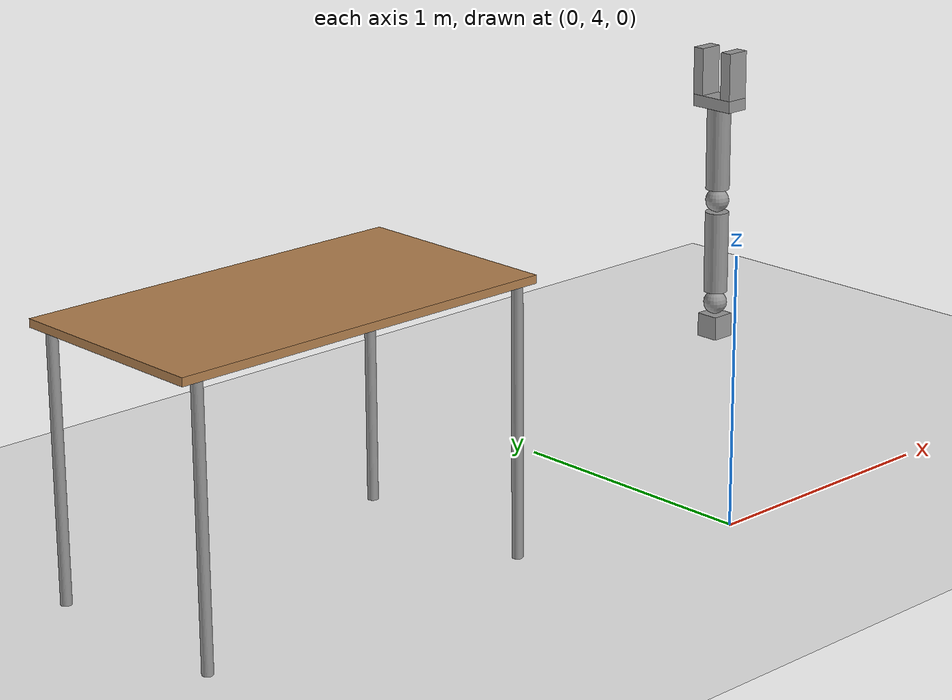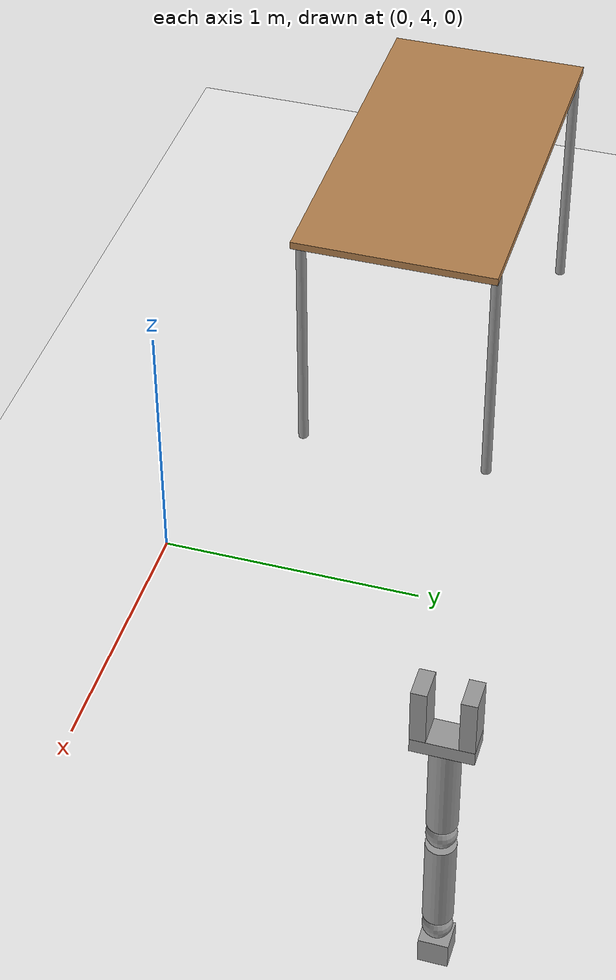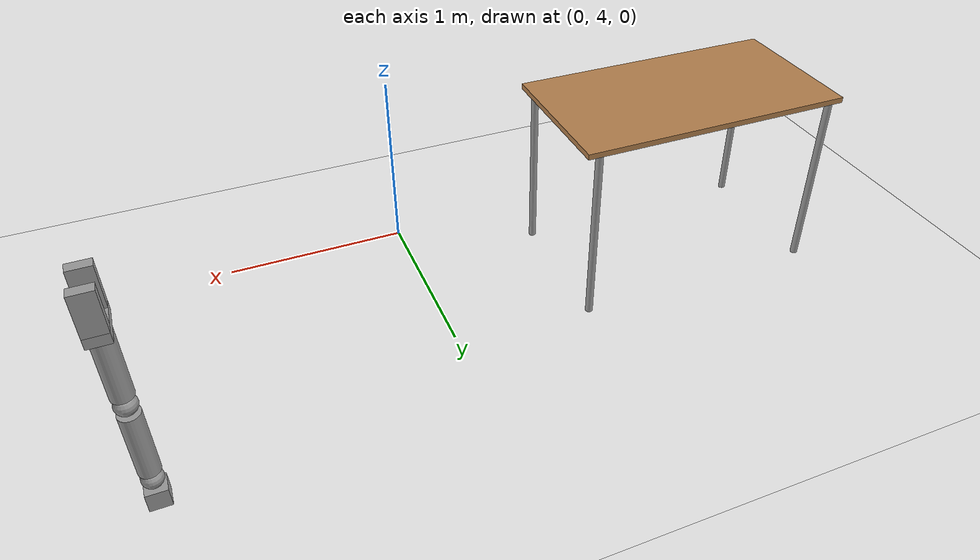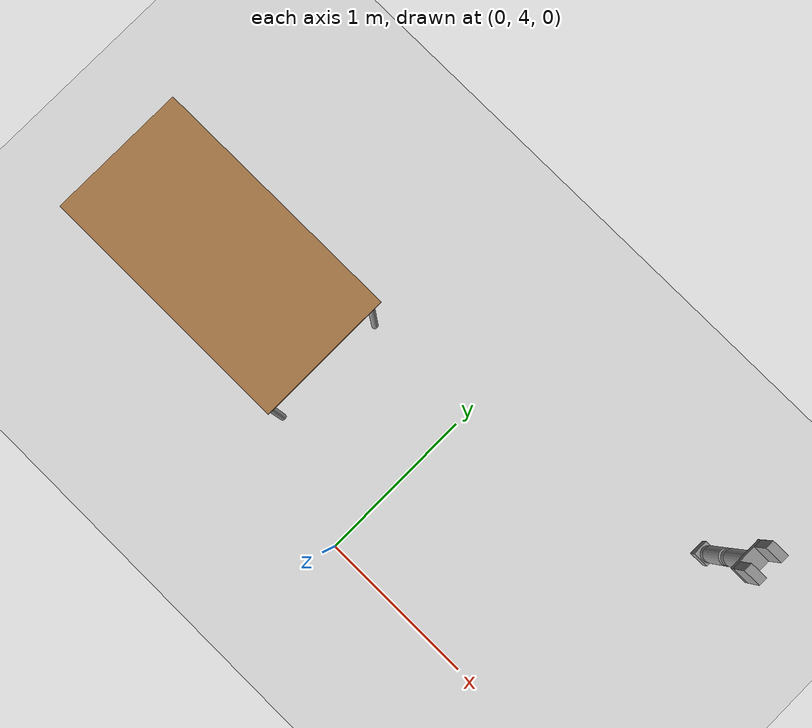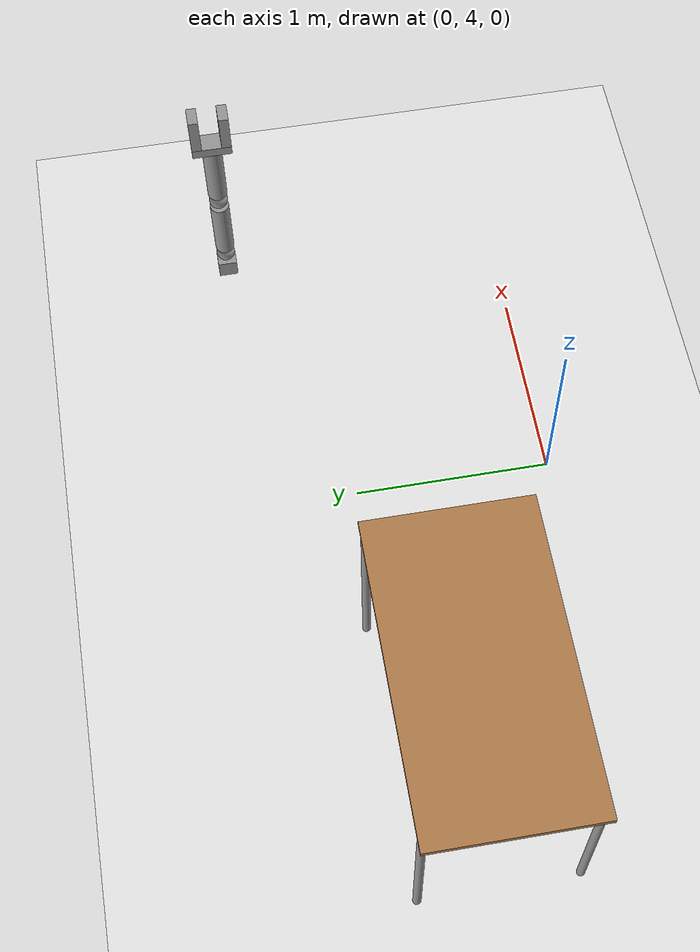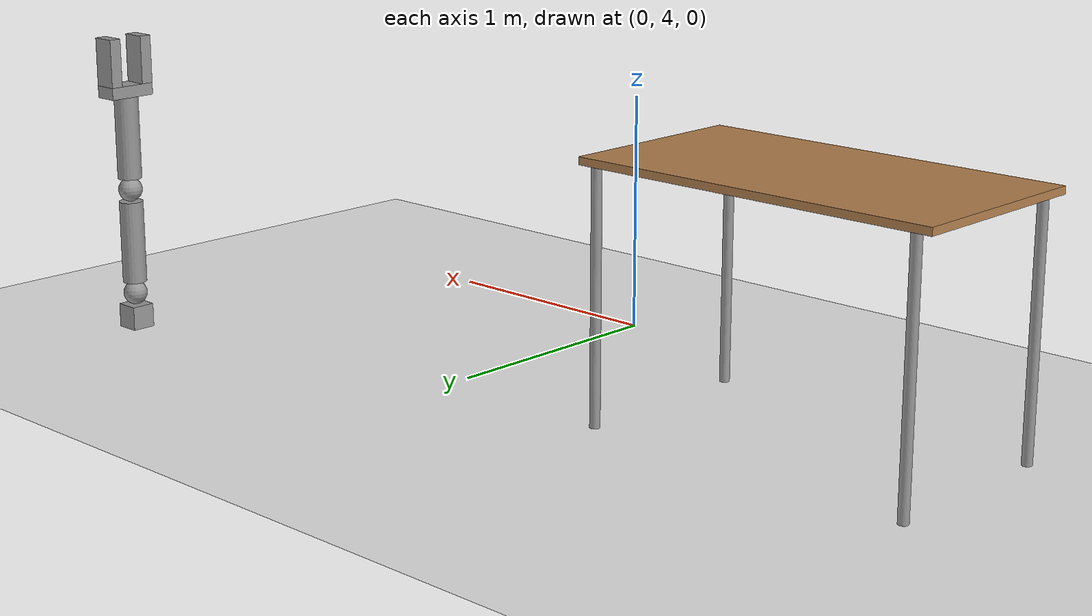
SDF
<sdf version="1.6">
 <world name="default">
  <model name="ground_plane">
   <static>1</static>
   <link name="link">
    <collision name="collision">
     <geometry><plane><normal>0 0 1</normal><size>100 100</size></plane></geometry>
     <surface>
      <contact><collide_bitmask>65535</collide_bitmask></contact>
      <friction><ode><mu>100</mu><mu2>50</mu2></ode></friction>
     </surface>
    </collision>
    <visual name="visual">
     <cast_shadows>0</cast_shadows>
     <geometry><plane><normal>0 0 1</normal><size>100 100</size></plane></geometry>
     <material>
      <script><uri>file://media/materials/scripts/gazebo.material</uri><name>Gazebo/White</name></script>
     </material>
    </visual>
   </link>
  </model>
  <model name="table">
   <static>1</static>
   <link name="link">
    <collision name="surface">
     <pose>0 0 1 0 -0 0</pose>
     <geometry><box><size>1.5 0.8 0.03</size></box></geometry>
     <surface><friction><ode><mu>0.6</mu><mu2>0.6</mu2></ode></friction></surface>
    </collision>
    <visual name="visual1">
     <pose>0 0 1 0 -0 0</pose>
     <geometry><box><size>1.5 0.8 0.03</size></box></geometry>
     <material>
      <script><uri>file://media/materials/scripts/gazebo.material</uri><name>Gazebo/Wood</name></script>
     </material>
    </visual>
    <collision name="front_left_leg">
     <pose>0.68 0.38 0.5 0 -0 0</pose>
     <geometry><cylinder><radius>0.02</radius><length>1</length></cylinder></geometry>
    </collision>
    <visual name="front_left_leg">
     <pose>0.68 0.38 0.5 0 -0 0</pose>
     <geometry><cylinder><radius>0.02</radius><length>1</length></cylinder></geometry>
     <material>
      <script><uri>file://media/materials/scripts/gazebo.material</uri><name>Gazebo/Grey</name></script>
     </material>
    </visual>
    <collision name="front_right_leg">
     <pose>0.68 -0.38 0.5 0 -0 0</pose>
     <geometry><cylinder><radius>0.02</radius><length>1</length></cylinder></geometry>
    </collision>
    <visual name="front_right_leg">
     <pose>0.68 -0.38 0.5 0 -0 0</pose>
     <geometry><cylinder><radius>0.02</radius><length>1</length></cylinder></geometry>
     <material>
      <script><uri>file://media/materials/scripts/gazebo.material</uri><name>Gazebo/Grey</name></script>
     </material>
    </visual>
    <collision name="back_right_leg">
     <pose>-0.68 -0.38 0.5 0 -0 0</pose>
     <geometry><cylinder><radius>0.02</radius><length>1</length></cylinder></geometry>
    </collision>
    <visual name="back_right_leg">
     <pose>-0.68 -0.38 0.5 0 -0 0</pose>
     <geometry><cylinder><radius>0.02</radius><length>1</length></cylinder></geometry>
     <material>
      <script><uri>file://media/materials/scripts/gazebo.material</uri><name>Gazebo/Grey</name></script>
     </material>
    </visual>
    <collision name="back_left_leg">
     <pose>-0.68 0.38 0.5 0 -0 0</pose>
     <geometry><cylinder><radius>0.02</radius><length>1</length></cylinder></geometry>
    </collision>
    <visual name="back_left_leg">
     <pose>-0.68 0.38 0.5 0 -0 0</pose>
     <geometry><cylinder><radius>0.02</radius><length>1</length></cylinder></geometry>
     <material>
      <script><uri>file://media/materials/scripts/gazebo.material</uri><name>Gazebo/Grey</name></script>
     </material>
    </visual>
   </link>
   <pose>-1.42953 4.69698 0 0 -0 0</pose>
  </model>
  <model name="myrobotarm_clone_clone">
   <link name="Base">
    <inertial>
     <mass>1</mass>
     <inertia>
      <ixx>0.166667</ixx>
      <ixy>0</ixy>
      <ixz>0</ixz>
      <iyy>0.166667</iyy>
      <iyz>0</iyz>
      <izz>0.166667</izz>
     </inertia>
    </inertial>
    <pose>1.29977 -2.48919 -0.073664 0 -0 0</pose>
    <visual name="visual">
     <geometry><box><size>0.1 0.1 0.1</size></box></geometry>
     <material>
      <lighting>1</lighting>
      <script><uri>file://media/materials/scripts/gazebo.material</uri><name>Gazebo/Grey</name></script>
      <shader type="pixel"><normal_map>__default__</normal_map></shader>
      <ambient>0.3 0.3 0.3 1</ambient>
      <diffuse>0.7 0.7 0.7 1</diffuse>
      <specular>0.01 0.01 0.01 1</specular>
      <emissive>0 0 0 1</emissive>
     </material>
    </visual>
    <collision name="collision">
     <geometry><box><size>0.1 0.1 0.1</size></box></geometry>
     <surface>
      <friction>
       <ode><mu>1</mu><mu2>1</mu2><fdir1>0 0 0</fdir1><slip1>0</slip1><slip2>0</slip2></ode>
       <torsional>
        <coefficient>1</coefficient>
        <patch_radius>0</patch_radius>
        <surface_radius>0</surface_radius>
        <use_patch_radius>1</use_patch_radius>
        <ode><slip>0</slip></ode>
       </torsional>
      </friction>
      <bounce><restitution_coefficient>0</restitution_coefficient><threshold>1e+06</threshold></bounce>
      <contact>
       <collide_without_contact>0</collide_without_contact>
       <collide_without_contact_bitmask>1</collide_without_contact_bitmask>
       <collide_bitmask>1</collide_bitmask>
       <ode>
        <soft_cfm>0</soft_cfm>
        <soft_erp>0.2</soft_erp>
        <kp>1e+13</kp>
        <kd>1</kd>
        <max_vel>0.01</max_vel>
        <min_depth>0</min_depth>
       </ode>
       <bullet>
        <split_impulse>1</split_impulse>
        <split_impulse_penetration_threshold>-0.01</split_impulse_penetration_threshold>
        <soft_cfm>0</soft_cfm>
        <soft_erp>0.2</soft_erp>
        <kp>1e+13</kp>
        <kd>1</kd>
       </bullet>
      </contact>
     </surface>
    </collision>
   </link>
   <link name="Base_hinge">
    <inertial>
     <mass>1</mass>
     <inertia><ixx>0.1</ixx><ixy>0</ixy><ixz>0</ixz><iyy>0.1</iyy><iyz>0</iyz><izz>0.1</izz></inertia>
    </inertial>
    <pose>1.29977 -2.48919 0.026336 0 -0 0</pose>
    <visual name="visual">
     <geometry><sphere><radius>0.05</radius></sphere></geometry>
     <material>
      <lighting>1</lighting>
      <script><uri>file://media/materials/scripts/gazebo.material</uri><name>Gazebo/Grey</name></script>
      <shader type="pixel"><normal_map>__default__</normal_map></shader>
      <ambient>0.3 0.3 0.3 1</ambient>
      <diffuse>0.7 0.7 0.7 1</diffuse>
      <specular>0.01 0.01 0.01 1</specular>
      <emissive>0 0 0 1</emissive>
     </material>
    </visual>
    <collision name="collision">
     <geometry><sphere><radius>0.05</radius></sphere></geometry>
     <surface>
      <friction>
       <ode><mu>1</mu><mu2>1</mu2><fdir1>0 0 0</fdir1><slip1>0</slip1><slip2>0</slip2></ode>
       <torsional>
        <coefficient>1</coefficient>
        <patch_radius>0</patch_radius>
        <surface_radius>0</surface_radius>
        <use_patch_radius>1</use_patch_radius>
        <ode><slip>0</slip></ode>
       </torsional>
      </friction>
      <bounce><restitution_coefficient>0</restitution_coefficient><threshold>1e+06</threshold></bounce>
      <contact>
       <collide_without_contact>0</collide_without_contact>
       <collide_without_contact_bitmask>1</collide_without_contact_bitmask>
       <collide_bitmask>1</collide_bitmask>
       <ode>
        <soft_cfm>0</soft_cfm>
        <soft_erp>0.2</soft_erp>
        <kp>1e+13</kp>
        <kd>1</kd>
        <max_vel>0.01</max_vel>
        <min_depth>0</min_depth>
       </ode>
       <bullet>
        <split_impulse>1</split_impulse>
        <split_impulse_penetration_threshold>-0.01</split_impulse_penetration_threshold>
        <soft_cfm>0</soft_cfm>
        <soft_erp>0.2</soft_erp>
        <kp>1e+13</kp>
        <kd>1</kd>
       </bullet>
      </contact>
     </surface>
    </collision>
   </link>
   <link name="Gripper_base">
    <inertial>
     <mass>1</mass>
     <inertia>
      <ixx>0.166667</ixx>
      <ixy>0</ixy>
      <ixz>0</ixz>
      <iyy>0.166667</iyy>
      <iyz>0</iyz>
      <izz>0.166667</izz>
     </inertia>
    </inertial>
    <pose>1.29977 -2.48919 0.901336 0 -0 0</pose>
    <visual name="visual">
     <geometry><box><size>0.1 0.2 0.05</size></box></geometry>
     <material>
      <lighting>1</lighting>
      <script><uri>file://media/materials/scripts/gazebo.material</uri><name>Gazebo/Grey</name></script>
      <shader type="vertex"><normal_map>__default__</normal_map></shader>
      <ambient>0.3 0.3 0.3 1</ambient>
      <diffuse>0.7 0.7 0.7 1</diffuse>
      <specular>0.01 0.01 0.01 1</specular>
      <emissive>0 0 0 1</emissive>
     </material>
    </visual>
    <collision name="collision">
     <geometry><box><size>0.1 0.2 0.05</size></box></geometry>
     <surface>
      <friction>
       <ode><mu>1</mu><mu2>1</mu2><fdir1>0 0 0</fdir1><slip1>0</slip1><slip2>0</slip2></ode>
       <torsional>
        <coefficient>1</coefficient>
        <patch_radius>0</patch_radius>
        <surface_radius>0</surface_radius>
        <use_patch_radius>1</use_patch_radius>
        <ode><slip>0</slip></ode>
       </torsional>
      </friction>
      <bounce><restitution_coefficient>0</restitution_coefficient><threshold>1e+06</threshold></bounce>
      <contact>
       <collide_without_contact>0</collide_without_contact>
       <collide_without_contact_bitmask>1</collide_without_contact_bitmask>
       <collide_bitmask>1</collide_bitmask>
       <ode>
        <soft_cfm>0</soft_cfm>
        <soft_erp>0.2</soft_erp>
        <kp>1e+13</kp>
        <kd>1</kd>
        <max_vel>0.01</max_vel>
        <min_depth>0</min_depth>
       </ode>
       <bullet>
        <split_impulse>1</split_impulse>
        <split_impulse_penetration_threshold>-0.01</split_impulse_penetration_threshold>
        <soft_cfm>0</soft_cfm>
        <soft_erp>0.2</soft_erp>
        <kp>1e+13</kp>
        <kd>1</kd>
       </bullet>
      </contact>
     </surface>
    </collision>
   </link>
   <link name="Gripper_left">
    <inertial>
     <mass>1</mass>
     <inertia>
      <ixx>0.166667</ixx>
      <ixy>0</ixy>
      <ixz>0</ixz>
      <iyy>0.166667</iyy>
      <iyz>0</iyz>
      <izz>0.166667</izz>
     </inertia>
    </inertial>
    <pose>1.29977 -2.41418 1.02633 -1.5707 0 0</pose>
    <visual name="visual_0">
     <geometry><box><size>0.1 0.2 0.05</size></box></geometry>
     <material>
      <lighting>1</lighting>
      <script><uri>file://media/materials/scripts/gazebo.material</uri><name>Gazebo/Grey</name></script>
      <shader type="vertex"><normal_map>__default__</normal_map></shader>
      <ambient>0.3 0.3 0.3 1</ambient>
      <diffuse>0.7 0.7 0.7 1</diffuse>
      <specular>0.01 0.01 0.01 1</specular>
      <emissive>0 0 0 1</emissive>
     </material>
    </visual>
    <collision name="collision">
     <geometry><box><size>0.1 0.2 0.05</size></box></geometry>
     <surface>
      <friction>
       <ode><mu>1</mu><mu2>1</mu2><fdir1>0 0 0</fdir1><slip1>0</slip1><slip2>0</slip2></ode>
       <torsional>
        <coefficient>1</coefficient>
        <patch_radius>0</patch_radius>
        <surface_radius>0</surface_radius>
        <use_patch_radius>1</use_patch_radius>
        <ode><slip>0</slip></ode>
       </torsional>
      </friction>
      <bounce><restitution_coefficient>0</restitution_coefficient><threshold>1e+06</threshold></bounce>
      <contact>
       <collide_without_contact>0</collide_without_contact>
       <collide_without_contact_bitmask>1</collide_without_contact_bitmask>
       <collide_bitmask>1</collide_bitmask>
       <ode>
        <soft_cfm>0</soft_cfm>
        <soft_erp>0.2</soft_erp>
        <kp>1e+13</kp>
        <kd>1</kd>
        <max_vel>0.01</max_vel>
        <min_depth>0</min_depth>
       </ode>
       <bullet>
        <split_impulse>1</split_impulse>
        <split_impulse_penetration_threshold>-0.01</split_impulse_penetration_threshold>
        <soft_cfm>0</soft_cfm>
        <soft_erp>0.2</soft_erp>
        <kp>1e+13</kp>
        <kd>1</kd>
       </bullet>
      </contact>
     </surface>
    </collision>
   </link>
   <link name="Gripper_right">
    <inertial>
     <mass>1</mass>
     <inertia>
      <ixx>0.166667</ixx>
      <ixy>0</ixy>
      <ixz>0</ixz>
      <iyy>0.166667</iyy>
      <iyz>0</iyz>
      <izz>0.166667</izz>
     </inertia>
    </inertial>
    <pose>1.29977 -2.56418 1.02633 1.5707 -0 0</pose>
    <visual name="visual_0">
     <geometry><box><size>0.1 0.2 0.05</size></box></geometry>
     <material>
      <lighting>1</lighting>
      <script><uri>file://media/materials/scripts/gazebo.material</uri><name>Gazebo/Grey</name></script>
      <shader type="vertex"><normal_map>__default__</normal_map></shader>
      <ambient>0.3 0.3 0.3 1</ambient>
      <diffuse>0.7 0.7 0.7 1</diffuse>
      <specular>0.01 0.01 0.01 1</specular>
      <emissive>0 0 0 1</emissive>
     </material>
    </visual>
    <collision name="collision">
     <geometry><box><size>0.1 0.2 0.05</size></box></geometry>
     <surface>
      <friction>
       <ode><mu>1</mu><mu2>1</mu2><fdir1>0 0 0</fdir1><slip1>0</slip1><slip2>0</slip2></ode>
       <torsional>
        <coefficient>1</coefficient>
        <patch_radius>0</patch_radius>
        <surface_radius>0</surface_radius>
        <use_patch_radius>1</use_patch_radius>
        <ode><slip>0</slip></ode>
       </torsional>
      </friction>
      <bounce><restitution_coefficient>0</restitution_coefficient><threshold>1e+06</threshold></bounce>
      <contact>
       <collide_without_contact>0</collide_without_contact>
       <collide_without_contact_bitmask>1</collide_without_contact_bitmask>
       <collide_bitmask>1</collide_bitmask>
       <ode>
        <soft_cfm>0</soft_cfm>
        <soft_erp>0.2</soft_erp>
        <kp>1e+13</kp>
        <kd>1</kd>
        <max_vel>0.01</max_vel>
        <min_depth>0</min_depth>
       </ode>
       <bullet>
        <split_impulse>1</split_impulse>
        <split_impulse_penetration_threshold>-0.01</split_impulse_penetration_threshold>
        <soft_cfm>0</soft_cfm>
        <soft_erp>0.2</soft_erp>
        <kp>1e+13</kp>
        <kd>1</kd>
       </bullet>
      </contact>
     </surface>
    </collision>
   </link>
   <link name="Section1">
    <inertial>
     <mass>1</mass>
     <inertia><ixx>0.145833</ixx><ixy>0</ixy><ixz>0</ixz><iyy>0.145833</iyy><iyz>0</iyz><izz>0.125</izz></inertia>
    </inertial>
    <pose>1.29977 -2.48919 0.251336 0 -0 0</pose>
    <visual name="visual">
     <geometry><cylinder><radius>0.05</radius><length>0.35</length></cylinder></geometry>
     <material>
      <lighting>1</lighting>
      <script><uri>file://media/materials/scripts/gazebo.material</uri><name>Gazebo/Grey</name></script>
      <shader type="pixel"><normal_map>__default__</normal_map></shader>
      <ambient>0.3 0.3 0.3 1</ambient>
      <diffuse>0.7 0.7 0.7 1</diffuse>
      <specular>0.01 0.01 0.01 1</specular>
      <emissive>0 0 0 1</emissive>
     </material>
    </visual>
    <collision name="collision">
     <geometry><cylinder><radius>0.05</radius><length>0.35</length></cylinder></geometry>
     <surface>
      <friction>
       <ode><mu>1</mu><mu2>1</mu2><fdir1>0 0 0</fdir1><slip1>0</slip1><slip2>0</slip2></ode>
       <torsional>
        <coefficient>1</coefficient>
        <patch_radius>0</patch_radius>
        <surface_radius>0</surface_radius>
        <use_patch_radius>1</use_patch_radius>
        <ode><slip>0</slip></ode>
       </torsional>
      </friction>
      <bounce><restitution_coefficient>0</restitution_coefficient><threshold>1e+06</threshold></bounce>
      <contact>
       <collide_without_contact>0</collide_without_contact>
       <collide_without_contact_bitmask>1</collide_without_contact_bitmask>
       <collide_bitmask>1</collide_bitmask>
       <ode>
        <soft_cfm>0</soft_cfm>
        <soft_erp>0.2</soft_erp>
        <kp>1e+13</kp>
        <kd>1</kd>
        <max_vel>0.01</max_vel>
        <min_depth>0</min_depth>
       </ode>
       <bullet>
        <split_impulse>1</split_impulse>
        <split_impulse_penetration_threshold>-0.01</split_impulse_penetration_threshold>
        <soft_cfm>0</soft_cfm>
        <soft_erp>0.2</soft_erp>
        <kp>1e+13</kp>
        <kd>1</kd>
       </bullet>
      </contact>
     </surface>
    </collision>
   </link>
   <link name="Section1_hinge">
    <inertial>
     <mass>1</mass>
     <inertia><ixx>0.1</ixx><ixy>0</ixy><ixz>0</ixz><iyy>0.1</iyy><iyz>0</iyz><izz>0.1</izz></inertia>
    </inertial>
    <pose>1.29977 -2.48919 0.476336 0 -0 0</pose>
    <visual name="visual">
     <geometry><sphere><radius>0.05</radius></sphere></geometry>
     <material>
      <lighting>1</lighting>
      <script><uri>file://media/materials/scripts/gazebo.material</uri><name>Gazebo/Grey</name></script>
      <shader type="pixel"><normal_map>__default__</normal_map></shader>
      <ambient>0.3 0.3 0.3 1</ambient>
      <diffuse>0.7 0.7 0.7 1</diffuse>
      <specular>0.01 0.01 0.01 1</specular>
      <emissive>0 0 0 1</emissive>
     </material>
    </visual>
    <collision name="collision">
     <geometry><sphere><radius>0.05</radius></sphere></geometry>
     <surface>
      <friction>
       <ode><mu>1</mu><mu2>1</mu2><fdir1>0 0 0</fdir1><slip1>0</slip1><slip2>0</slip2></ode>
       <torsional>
        <coefficient>1</coefficient>
        <patch_radius>0</patch_radius>
        <surface_radius>0</surface_radius>
        <use_patch_radius>1</use_patch_radius>
        <ode><slip>0</slip></ode>
       </torsional>
      </friction>
      <bounce><restitution_coefficient>0</restitution_coefficient><threshold>1e+06</threshold></bounce>
      <contact>
       <collide_without_contact>0</collide_without_contact>
       <collide_without_contact_bitmask>1</collide_without_contact_bitmask>
       <collide_bitmask>1</collide_bitmask>
       <ode>
        <soft_cfm>0</soft_cfm>
        <soft_erp>0.2</soft_erp>
        <kp>1e+13</kp>
        <kd>1</kd>
        <max_vel>0.01</max_vel>
        <min_depth>0</min_depth>
       </ode>
       <bullet>
        <split_impulse>1</split_impulse>
        <split_impulse_penetration_threshold>-0.01</split_impulse_penetration_threshold>
        <soft_cfm>0</soft_cfm>
        <soft_erp>0.2</soft_erp>
        <kp>1e+13</kp>
        <kd>1</kd>
       </bullet>
      </contact>
     </surface>
    </collision>
   </link>
   <link name="Section2">
    <inertial>
     <mass>1</mass>
     <inertia><ixx>0.145833</ixx><ixy>0</ixy><ixz>0</ixz><iyy>0.145833</iyy><iyz>0</iyz><izz>0.125</izz></inertia>
    </inertial>
    <pose>1.29977 -2.48919 0.701336 0 -0 0</pose>
    <visual name="visual">
     <geometry><cylinder><radius>0.05</radius><length>0.35</length></cylinder></geometry>
     <material>
      <lighting>1</lighting>
      <script><uri>file://media/materials/scripts/gazebo.material</uri><name>Gazebo/Grey</name></script>
      <shader type="pixel"><normal_map>__default__</normal_map></shader>
      <ambient>0.3 0.3 0.3 1</ambient>
      <diffuse>0.7 0.7 0.7 1</diffuse>
      <specular>0.01 0.01 0.01 1</specular>
      <emissive>0 0 0 1</emissive>
     </material>
    </visual>
    <collision name="collision">
     <geometry><cylinder><radius>0.05</radius><length>0.35</length></cylinder></geometry>
     <surface>
      <friction>
       <ode><mu>1</mu><mu2>1</mu2><fdir1>0 0 0</fdir1><slip1>0</slip1><slip2>0</slip2></ode>
       <torsional>
        <coefficient>1</coefficient>
        <patch_radius>0</patch_radius>
        <surface_radius>0</surface_radius>
        <use_patch_radius>1</use_patch_radius>
        <ode><slip>0</slip></ode>
       </torsional>
      </friction>
      <bounce><restitution_coefficient>0</restitution_coefficient><threshold>1e+06</threshold></bounce>
      <contact>
       <collide_without_contact>0</collide_without_contact>
       <collide_without_contact_bitmask>1</collide_without_contact_bitmask>
       <collide_bitmask>1</collide_bitmask>
       <ode>
        <soft_cfm>0</soft_cfm>
        <soft_erp>0.2</soft_erp>
        <kp>1e+13</kp>
        <kd>1</kd>
        <max_vel>0.01</max_vel>
        <min_depth>0</min_depth>
       </ode>
       <bullet>
        <split_impulse>1</split_impulse>
        <split_impulse_penetration_threshold>-0.01</split_impulse_penetration_threshold>
        <soft_cfm>0</soft_cfm>
        <soft_erp>0.2</soft_erp>
        <kp>1e+13</kp>
        <kd>1</kd>
       </bullet>
      </contact>
     </surface>
    </collision>
   </link>
   <joint name="Fix1" type="fixed">
    <parent>Section1</parent>
    <child>Section1_hinge</child>
    <physics>
     <ode><limit><cfm>0</cfm><erp>0.2</erp></limit><suspension><cfm>0</cfm><erp>0.2</erp></suspension></ode>
    </physics>
   </joint>
   <joint name="Gripper_J_left" type="prismatic">
    <parent>Gripper_base</parent>
    <child>Gripper_right</child>
    <axis>
     <xyz>0 0 1</xyz>
     <use_parent_model_frame>0</use_parent_model_frame>
     <limit>
      <lower>-1.79769e+308</lower>
      <upper>1.79769e+308</upper>
      <effort>-1</effort>
      <velocity>-1</velocity>
     </limit>
     <dynamics>
      <spring_reference>0</spring_reference>
      <spring_stiffness>0</spring_stiffness>
      <damping>0</damping>
      <friction>3</friction>
     </dynamics>
    </axis>
    <physics>
     <ode><limit><cfm>0</cfm><erp>0.2</erp></limit><suspension><cfm>0</cfm><erp>0.2</erp></suspension></ode>
    </physics>
   </joint>
   <joint name="Gripper_J_right" type="prismatic">
    <parent>Gripper_base</parent>
    <child>Gripper_left</child>
    <axis>
     <xyz>0 0 1</xyz>
     <use_parent_model_frame>0</use_parent_model_frame>
     <limit>
      <lower>-1.79769e+308</lower>
      <upper>1.79769e+308</upper>
      <effort>-1</effort>
      <velocity>-1</velocity>
     </limit>
     <dynamics>
      <spring_reference>0</spring_reference>
      <spring_stiffness>0</spring_stiffness>
      <damping>0</damping>
      <friction>3</friction>
     </dynamics>
    </axis>
    <physics>
     <ode><limit><cfm>0</cfm><erp>0.2</erp></limit><suspension><cfm>0</cfm><erp>0.2</erp></suspension></ode>
    </physics>
   </joint>
   <joint name="J1" type="revolute">
    <parent>Base</parent>
    <child>Base_hinge</child>
    <axis>
     <xyz>0 0 1</xyz>
     <use_parent_model_frame>0</use_parent_model_frame>
     <limit>
      <lower>-1.79769e+308</lower>
      <upper>1.79769e+308</upper>
      <effort>-1</effort>
      <velocity>-1</velocity>
     </limit>
     <dynamics>
      <spring_reference>0</spring_reference>
      <spring_stiffness>0</spring_stiffness>
      <damping>0</damping>
      <friction>3</friction>
     </dynamics>
    </axis>
    <physics>
     <ode><limit><cfm>0</cfm><erp>0.2</erp></limit><suspension><cfm>0</cfm><erp>0.2</erp></suspension></ode>
    </physics>
   </joint>
   <joint name="J2" type="revolute">
    <parent>Section1</parent>
    <child>Base_hinge</child>
    <axis>
     <xyz>0 1 0</xyz>
     <use_parent_model_frame>0</use_parent_model_frame>
     <limit>
      <lower>-1.79769e+308</lower>
      <upper>1.79769e+308</upper>
      <effort>-1</effort>
      <velocity>-1</velocity>
     </limit>
     <dynamics>
      <spring_reference>0</spring_reference>
      <spring_stiffness>0</spring_stiffness>
      <damping>0</damping>
      <friction>3</friction>
     </dynamics>
    </axis>
    <physics>
     <ode><limit><cfm>0</cfm><erp>0.2</erp></limit><suspension><cfm>0</cfm><erp>0.2</erp></suspension></ode>
    </physics>
   </joint>
   <joint name="J3" type="revolute">
    <parent>Section2</parent>
    <child>Section1_hinge</child>
    <axis>
     <xyz>0 1 0</xyz>
     <use_parent_model_frame>0</use_parent_model_frame>
     <limit>
      <lower>-1.79769e+308</lower>
      <upper>1.79769e+308</upper>
      <effort>-1</effort>
      <velocity>-1</velocity>
     </limit>
     <dynamics>
      <spring_reference>0</spring_reference>
      <spring_stiffness>0</spring_stiffness>
      <damping>0</damping>
      <friction>3</friction>
     </dynamics>
    </axis>
    <physics>
     <ode><limit><cfm>0</cfm><erp>0.2</erp></limit><suspension><cfm>0</cfm><erp>0.2</erp></suspension></ode>
    </physics>
   </joint>
   <joint name="J4" type="revolute">
    <parent>Gripper_base</parent>
    <child>Section2</child>
    <axis>
     <xyz>0 0 1</xyz>
     <use_parent_model_frame>0</use_parent_model_frame>
     <limit>
      <lower>-1.79769e+308</lower>
      <upper>1.79769e+308</upper>
      <effort>-1</effort>
      <velocity>-1</velocity>
     </limit>
     <dynamics>
      <spring_reference>0</spring_reference>
      <spring_stiffness>0</spring_stiffness>
      <damping>0</damping>
      <friction>3</friction>
     </dynamics>
    </axis>
    <physics>
     <ode><limit><cfm>0</cfm><erp>0.2</erp></limit><suspension><cfm>0</cfm><erp>0.2</erp></suspension></ode>
    </physics>
   </joint>
   <static>0</static>
   <pose>0.234309 7.96078 0.12104 -0.001071 -3e-06 0.001329</pose>
  </model>
 </world>
</sdf>
